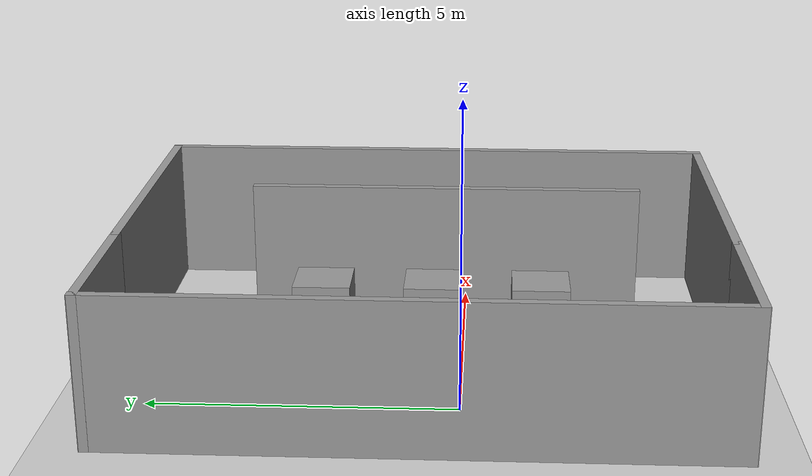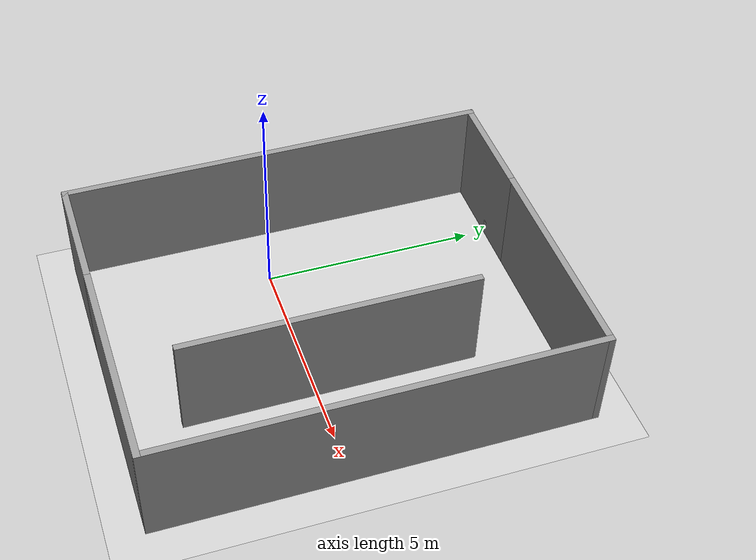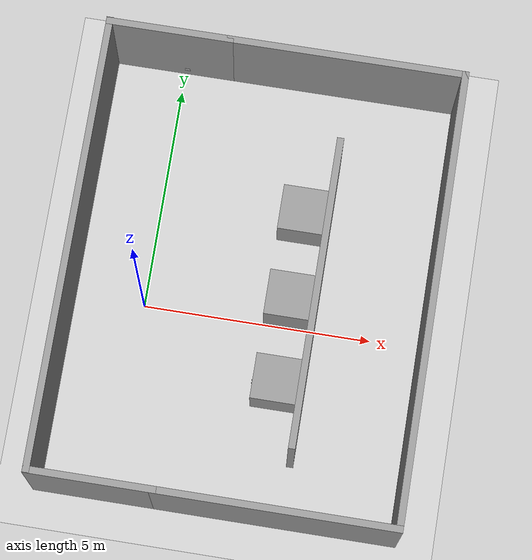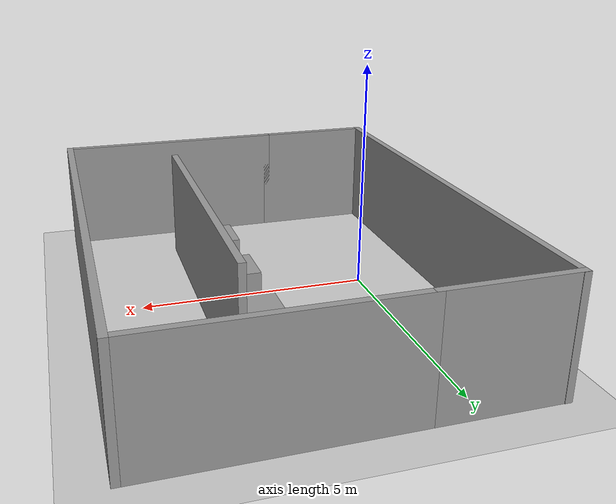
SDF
<?xml version="1.0" ?>
<sdf version='1.6'>
  <world name='default'>
    <physics name='default_physics' default='0' type='ode'>
      <ode>
        <solver>
          <type>quick</type>
          <iters>20</iters>
          <sor>1</sor>
          <use_dynamic_moi_rescaling>0</use_dynamic_moi_rescaling>
        </solver>
        <constraints>
          <cfm>0</cfm>
          <erp>0.2</erp>
          <contact_max_correcting_vel>100</contact_max_correcting_vel>
          <contact_surface_layer>0</contact_surface_layer>
        </constraints>
      </ode>
      <max_step_size>0.001</max_step_size>
      <real_time_factor>1</real_time_factor>
      <real_time_update_rate>1000</real_time_update_rate>
    </physics>
    <light name='sun' type='directional'>
      <cast_shadows>1</cast_shadows>
      <pose frame=''>0 0 10 0 -0 0</pose>
      <diffuse>0.8 0.8 0.8 1</diffuse>
      <specular>0.1 0.1 0.1 1</specular>
      <attenuation>
        <range>1000</range>
        <constant>0.9</constant>
        <linear>0.01</linear>
        <quadratic>0.001</quadratic>
      </attenuation>
      <direction>-0.5 0.5 -1</direction>
    </light>
    <model name='ground_plane'>
      <static>1</static>
      <link name='link'>
        <collision name='collision'>
          <geometry>
            <plane>
              <normal>0 0 1</normal>
              <size>100 100</size>
            </plane>
          </geometry>
          <surface>
            <friction>
              <ode>
                <mu>100</mu>
                <mu2>50</mu2>
              </ode>
              <torsional>
                <ode/>
              </torsional>
            </friction>
            <contact>
              <ode/>
            </contact>
            <bounce/>
          </surface>
          <max_contacts>10</max_contacts>
        </collision>
        <visual name='visual'>
          <cast_shadows>0</cast_shadows>
          <geometry>
            <plane>
              <normal>0 0 1</normal>
              <size>100 100</size>
            </plane>
          </geometry>
          <material>
            <script>
              <uri>file://media/materials/scripts/gazebo.material</uri>
              <name>Gazebo/Grey</name>
            </script>
          </material>
        </visual>
        <self_collide>0</self_collide>
        <kinematic>0</kinematic>
        <gravity>1</gravity>
      </link>
    </model>
    <model name='Constructa_test'>
      <pose frame=''>2.25878 0.630185 0 0 -0 0</pose>
      <link name='Wall_1'>
        <collision name='Wall_1_Collision'>
          <geometry>
            <box>
              <size>5.25 0.15 2.5</size>
            </box>
          </geometry>
          <pose frame=''>0 0 1.25 0 -0 0</pose>
          <max_contacts>10</max_contacts>
          <surface>
            <contact>
              <ode/>
            </contact>
            <bounce/>
            <friction>
              <torsional>
                <ode/>
              </torsional>
              <ode/>
            </friction>
          </surface>
        </collision>
        <visual name='Wall_1_Visual'>
          <pose frame=''>0 0 1.25 0 -0 0</pose>
          <geometry>
            <box>
              <size>5.25 0.15 2.5</size>
            </box>
          </geometry>
          <material>
            <script>
              <uri>file://media/materials/scripts/gazebo.material</uri>
              <name>Gazebo/Grey</name>
            </script>
            <ambient>1 1 1 1</ambient>
          </material>
        </visual>
        <pose frame=''>1.315 -4.93 0 0 -0 0</pose>
        <self_collide>0</self_collide>
        <kinematic>0</kinematic>
        <gravity>1</gravity>
      </link>
      <link name='Wall_12'>
        <collision name='Wall_12_Collision'>
          <geometry>
            <box>
              <size>6.75 0.15 2.5</size>
            </box>
          </geometry>
          <pose frame=''>0 0 1.25 0 -0 0</pose>
          <max_contacts>10</max_contacts>
          <surface>
            <contact>
              <ode/>
            </contact>
            <bounce/>
            <friction>
              <torsional>
                <ode/>
              </torsional>
              <ode/>
            </friction>
          </surface>
        </collision>
        <visual name='Wall_12_Visual'>
          <pose frame=''>0 0 1.25 0 -0 0</pose>
          <geometry>
            <box>
              <size>6.75 0.15 2.5</size>
            </box>
          </geometry>
          <material>
            <script>
              <uri>file://media/materials/scripts/gazebo.material</uri>
              <name>Gazebo/Grey</name>
            </script>
            <ambient>1 1 1 1</ambient>
          </material>
        </visual>
        <pose frame=''>1.44046 -0.275616 0 0 0 -1.5708</pose>
        <self_collide>0</self_collide>
        <kinematic>0</kinematic>
        <gravity>1</gravity>
      </link>
      <link name='Wall_2'>
        <collision name='Wall_2_Collision'>
          <geometry>
            <box>
              <size>10 0.15 2.5</size>
            </box>
          </geometry>
          <pose frame=''>0 0 1.25 0 -0 0</pose>
          <max_contacts>10</max_contacts>
          <surface>
            <contact>
              <ode/>
            </contact>
            <bounce/>
            <friction>
              <torsional>
                <ode/>
              </torsional>
              <ode/>
            </friction>
          </surface>
        </collision>
        <visual name='Wall_2_Visual'>
          <pose frame=''>0 0 1.25 0 -0 0</pose>
          <geometry>
            <box>
              <size>10 0.15 2.5</size>
            </box>
          </geometry>
          <material>
            <script>
              <uri>file://media/materials/scripts/gazebo.material</uri>
              <name>Gazebo/Grey</name>
            </script>
            <ambient>1 1 1 1</ambient>
          </material>
        </visual>
        <pose frame=''>3.865 -0.005 0 0 -0 1.5708</pose>
        <self_collide>0</self_collide>
        <kinematic>0</kinematic>
        <gravity>1</gravity>
      </link>
      <link name='Wall_3'>
        <collision name='Wall_3_Collision'>
          <geometry>
            <box>
              <size>5.25 0.15 2.5</size>
            </box>
          </geometry>
          <pose frame=''>0 0 1.25 0 -0 0</pose>
          <max_contacts>10</max_contacts>
          <surface>
            <contact>
              <ode/>
            </contact>
            <bounce/>
            <friction>
              <torsional>
                <ode/>
              </torsional>
              <ode/>
            </friction>
          </surface>
        </collision>
        <visual name='Wall_3_Visual'>
          <pose frame=''>0 0 1.25 0 -0 0</pose>
          <geometry>
            <box>
              <size>5.25 0.15 2.5</size>
            </box>
          </geometry>
          <material>
            <script>
              <uri>file://media/materials/scripts/gazebo.material</uri>
              <name>Gazebo/Grey</name>
            </script>
            <ambient>1 1 1 1</ambient>
          </material>
        </visual>
        <pose frame=''>1.315 4.92 0 0 -0 3.14159</pose>
        <self_collide>0</self_collide>
        <kinematic>0</kinematic>
        <gravity>1</gravity>
      </link>
      <link name='Wall_4'>
        <collision name='Wall_4_Collision'>
          <geometry>
            <box>
              <size>2.78 0.15 2.5</size>
            </box>
          </geometry>
          <pose frame=''>0 0 1.25 0 -0 0</pose>
          <max_contacts>10</max_contacts>
          <surface>
            <contact>
              <ode/>
            </contact>
            <bounce/>
            <friction>
              <torsional>
                <ode/>
              </torsional>
              <ode/>
            </friction>
          </surface>
        </collision>
        <visual name='Wall_4_Visual'>
          <pose frame=''>0 0 1.25 0 -0 0</pose>
          <geometry>
            <box>
              <size>2.78 0.15 2.5</size>
            </box>
          </geometry>
          <material>
            <script>
              <uri>file://media/materials/scripts/gazebo.material</uri>
              <name>Gazebo/Grey</name>
            </script>
            <ambient>1 1 1 1</ambient>
          </material>
        </visual>
        <pose frame=''>-2.55 4.92 0 0 -0 3.14159</pose>
        <self_collide>0</self_collide>
        <kinematic>0</kinematic>
        <gravity>1</gravity>
      </link>
      <link name='Wall_5'>
        <collision name='Wall_5_Collision'>
          <geometry>
            <box>
              <size>10 0.15 2.5</size>
            </box>
          </geometry>
          <pose frame=''>0 0 1.25 0 -0 0</pose>
          <max_contacts>10</max_contacts>
          <surface>
            <contact>
              <ode/>
            </contact>
            <bounce/>
            <friction>
              <torsional>
                <ode/>
              </torsional>
              <ode/>
            </friction>
          </surface>
        </collision>
        <visual name='Wall_5_Visual'>
          <pose frame=''>0 0 1.25 0 -0 0</pose>
          <geometry>
            <box>
              <size>10 0.15 2.5</size>
            </box>
          </geometry>
          <material>
            <script>
              <uri>file://media/materials/scripts/gazebo.material</uri>
              <name>Gazebo/Grey</name>
            </script>
            <ambient>1 1 1 1</ambient>
          </material>
        </visual>
        <pose frame=''>-3.865 0.005 0 0 0 -1.5708</pose>
        <self_collide>0</self_collide>
        <kinematic>0</kinematic>
        <gravity>1</gravity>
      </link>
      <link name='Wall_6'>
        <collision name='Wall_6_Collision'>
          <geometry>
            <box>
              <size>2.78 0.15 2.5</size>
            </box>
          </geometry>
          <pose frame=''>0 0 1.25 0 -0 0</pose>
          <max_contacts>10</max_contacts>
          <surface>
            <contact>
              <ode/>
            </contact>
            <bounce/>
            <friction>
              <torsional>
                <ode/>
              </torsional>
              <ode/>
            </friction>
          </surface>
        </collision>
        <visual name='Wall_6_Visual'>
          <pose frame=''>0 0 1.25 0 -0 0</pose>
          <geometry>
            <box>
              <size>2.78 0.15 2.5</size>
            </box>
          </geometry>
          <material>
            <script>
              <uri>file://media/materials/scripts/gazebo.material</uri>
              <name>Gazebo/Grey</name>
            </script>
            <ambient>1 1 1 1</ambient>
          </material>
        </visual>
        <pose frame=''>-2.55 -4.93 0 0 -0 0</pose>
        <self_collide>0</self_collide>
        <kinematic>0</kinematic>
        <gravity>1</gravity>
      </link>
      <static>1</static>
    </model>
    <model name='unit_box_0_clone'>
      <pose frame=''>3.12967 0.53945 0.5 -1e-06 -0 3e-06</pose>
      <link name='link'>
        <inertial>
          <mass>1</mass>
          <inertia>
            <ixx>0.166667</ixx>
            <ixy>0</ixy>
            <ixz>0</ixz>
            <iyy>0.166667</iyy>
            <iyz>0</iyz>
            <izz>0.166667</izz>
          </inertia>
        </inertial>
        <collision name='collision'>
          <geometry>
            <box>
              <size>1 1 1</size>
            </box>
          </geometry>
          <max_contacts>10</max_contacts>
          <surface>
            <contact>
              <ode/>
            </contact>
            <bounce/>
            <friction>
              <torsional>
                <ode/>
              </torsional>
              <ode/>
            </friction>
          </surface>
        </collision>
        <visual name='visual'>
          <geometry>
            <box>
              <size>1 1 1</size>
            </box>
          </geometry>
          <material>
            <script>
              <name>Gazebo/Grey</name>
              <uri>file://media/materials/scripts/gazebo.material</uri>
            </script>
          </material>
        </visual>
        <self_collide>0</self_collide>
        <kinematic>0</kinematic>
        <gravity>1</gravity>
      </link>
    </model>
    <model name='unit_box_0_clone_clone'>
      <pose frame=''>3.12992 -1.33063 0.499996 -8e-06 -0 -1e-06</pose>
      <link name='link'>
        <inertial>
          <mass>1</mass>
          <inertia>
            <ixx>0.166667</ixx>
            <ixy>0</ixy>
            <ixz>0</ixz>
            <iyy>0.166667</iyy>
            <iyz>0</iyz>
            <izz>0.166667</izz>
          </inertia>
        </inertial>
        <collision name='collision'>
          <geometry>
            <box>
              <size>1 1 1</size>
            </box>
          </geometry>
          <max_contacts>10</max_contacts>
          <surface>
            <contact>
              <ode/>
            </contact>
            <bounce/>
            <friction>
              <torsional>
                <ode/>
              </torsional>
              <ode/>
            </friction>
          </surface>
        </collision>
        <visual name='visual'>
          <geometry>
            <box>
              <size>1 1 1</size>
            </box>
          </geometry>
          <material>
            <script>
              <name>Gazebo/Grey</name>
              <uri>file://media/materials/scripts/gazebo.material</uri>
            </script>
          </material>
        </visual>
        <self_collide>0</self_collide>
        <kinematic>0</kinematic>
        <gravity>1</gravity>
      </link>
    </model>
    <model name='marker1_12cm_clone'>
      <static>1</static>
      <link name='marker1_12cm'>
        <visual name='visual'>
          <geometry>
            <box>
              <size>0.001 0.12 0.12</size>
            </box>
          </geometry>
          <material>
            <script>
              <uri>model://marker1_12cm/material/scripts</uri>
              <uri>model://marker1_12cm/material/textures</uri>
              <name>ARtrack/marker1_12cm</name>
            </script>
          </material>
        </visual>
        <collision name='collision'>
          <geometry>
            <box>
              <size>0.001 0.12 0.12</size>
            </box>
          </geometry>
          <max_contacts>10</max_contacts>
          <surface>
            <contact>
              <ode/>
            </contact>
            <bounce/>
            <friction>
              <torsional>
                <ode/>
              </torsional>
              <ode/>
            </friction>
          </surface>
        </collision>
        <self_collide>0</self_collide>
        <kinematic>0</kinematic>
        <gravity>1</gravity>
      </link>
      <pose frame=''>2.61057 0.52124 0.322341 0 -0 0</pose>
    </model>
    <model name='marker2_12cm'>
      <static>1</static>
      <link name='marker2_12cm'>
        <visual name='visual'>
          <geometry>
            <box>
              <size>0.001 0.12 0.12</size>
            </box>
          </geometry>
          <material>
            <script>
              <uri>model://marker2_12cm/material/scripts</uri>
              <uri>model://marker2_12cm/material/textures</uri>
              <name>ARtrack/marker2_12cm</name>
            </script>
          </material>
        </visual>
        <collision name='collision'>
          <geometry>
            <box>
              <size>0.001 0.12 0.12</size>
            </box>
          </geometry>
          <max_contacts>10</max_contacts>
          <surface>
            <contact>
              <ode/>
            </contact>
            <bounce/>
            <friction>
              <torsional>
                <ode/>
              </torsional>
              <ode/>
            </friction>
          </surface>
        </collision>
        <self_collide>0</self_collide>
        <kinematic>0</kinematic>
        <gravity>1</gravity>
      </link>
      <pose frame=''>0.05 5.467 0.322341 0 0 1.5467</pose>
    </model>
    <model name='marker1_12cm_clone_0'>
      <static>1</static>
      <link name='marker1_12cm'>
        <visual name='visual'>
          <geometry>
            <box>
              <size>0.001 0.12 0.12</size>
            </box>
          </geometry>
          <material>
            <script>
              <uri>model://marker1_12cm/material/scripts</uri>
              <uri>model://marker1_12cm/material/textures</uri>
              <name>ARtrack/marker1_12cm</name>
            </script>
          </material>
        </visual>
        <collision name='collision'>
          <geometry>
            <box>
              <size>0.001 0.12 0.12</size>
            </box>
          </geometry>
          <max_contacts>10</max_contacts>
          <surface>
            <contact>
              <ode/>
            </contact>
            <bounce/>
            <friction>
              <torsional>
                <ode/>
              </torsional>
              <ode/>
            </friction>
          </surface>
        </collision>
        <self_collide>0</self_collide>
        <kinematic>0</kinematic>
        <gravity>1</gravity>
      </link>
      <pose frame=''>2.60049 -1.35487 0.322341 0 -0 0</pose>
    </model>
    <gravity>0 0 -9.8</gravity>
    <magnetic_field>6e-06 2.3e-05 -4.2e-05</magnetic_field>
    <atmosphere type='adiabatic'/>
    <scene>
      <ambient>0.4 0.4 0.4 1</ambient>
      <background>0.7 0.7 0.7 1</background>
      <shadows>1</shadows>
    </scene>
    <spherical_coordinates>
      <surface_model>EARTH_WGS84</surface_model>
      <latitude_deg>0</latitude_deg>
      <longitude_deg>0</longitude_deg>
      <elevation>0</elevation>
      <heading_deg>0</heading_deg>
    </spherical_coordinates>
    <model name='unit_box_0_clone_clone_0'>
      <pose frame=''>3.12634 2.46465 0.499996 -8e-06 -0 -3e-06</pose>
      <link name='link'>
        <inertial>
          <mass>1</mass>
          <inertia>
            <ixx>0.166667</ixx>
            <ixy>0</ixy>
            <ixz>0</ixz>
            <iyy>0.166667</iyy>
            <iyz>0</iyz>
            <izz>0.166667</izz>
          </inertia>
        </inertial>
        <collision name='collision'>
          <geometry>
            <box>
              <size>1 1 1</size>
            </box>
          </geometry>
          <max_contacts>10</max_contacts>
          <surface>
            <contact>
              <ode/>
            </contact>
            <bounce/>
            <friction>
              <torsional>
                <ode/>
              </torsional>
              <ode/>
            </friction>
          </surface>
        </collision>
        <visual name='visual'>
          <geometry>
            <box>
              <size>1 1 1</size>
            </box>
          </geometry>
          <material>
            <script>
              <name>Gazebo/Grey</name>
              <uri>file://media/materials/scripts/gazebo.material</uri>
            </script>
          </material>
        </visual>
        <self_collide>0</self_collide>
        <kinematic>0</kinematic>
        <gravity>1</gravity>
      </link>
    </model>
    <model name='marker1_12cm_clone_clone'>
      <static>1</static>
      <link name='marker1_12cm'>
        <visual name='visual'>
          <geometry>
            <box>
              <size>0.001 0.12 0.12</size>
            </box>
          </geometry>
          <material>
            <script>
              <uri>model://marker1_12cm/material/scripts</uri>
              <uri>model://marker1_12cm/material/textures</uri>
              <name>ARtrack/marker1_12cm</name>
            </script>
          </material>
        </visual>
        <collision name='collision'>
          <geometry>
            <box>
              <size>0.001 0.12 0.12</size>
            </box>
          </geometry>
          <max_contacts>10</max_contacts>
          <surface>
            <contact>
              <ode/>
            </contact>
            <bounce/>
            <friction>
              <torsional>
                <ode/>
              </torsional>
              <ode/>
            </friction>
          </surface>
        </collision>
        <self_collide>0</self_collide>
        <kinematic>0</kinematic>
        <gravity>1</gravity>
      </link>
      <pose frame=''>2.62421 2.53128 0.322341 0 -0 0</pose>
    </model>
    <gui>
    <camera name="gzclient_camera">
      <pose>0.655 -2.358 3.037 0 0.576 1.4842</pose>
    </camera>
   </gui>
  </world>
</sdf>
